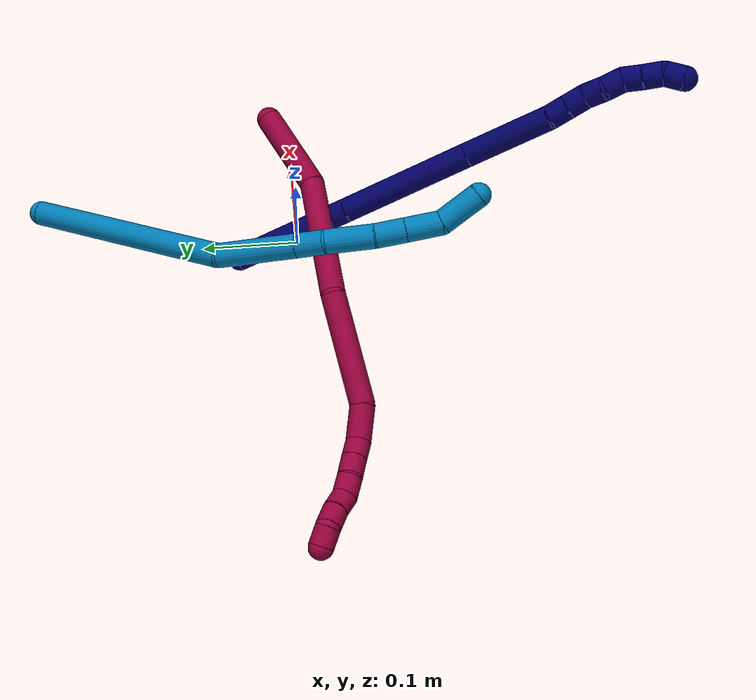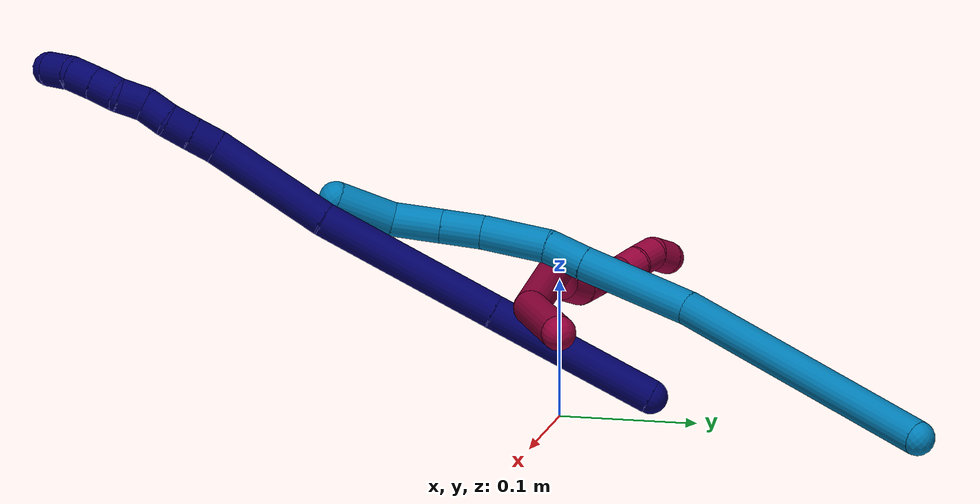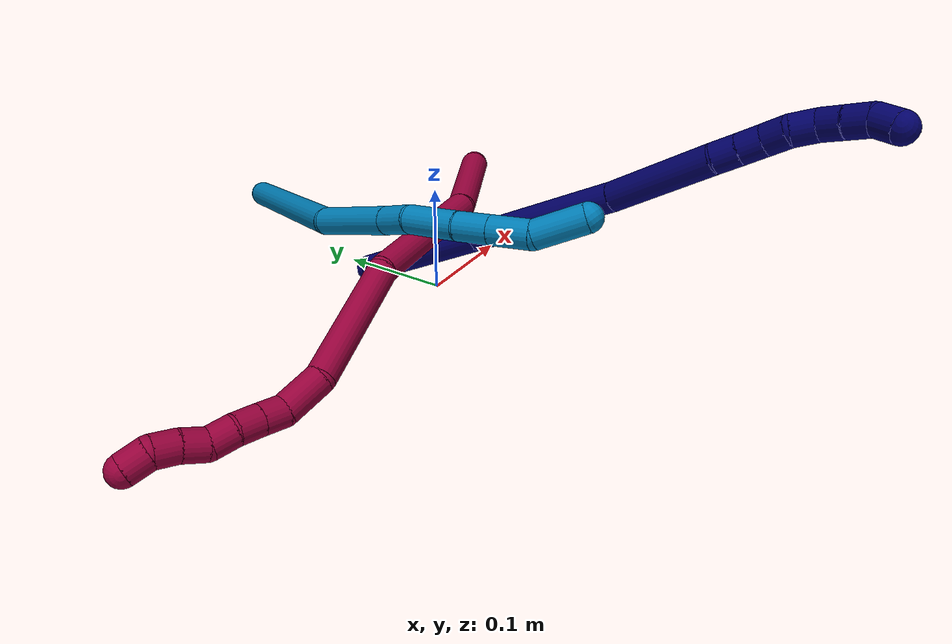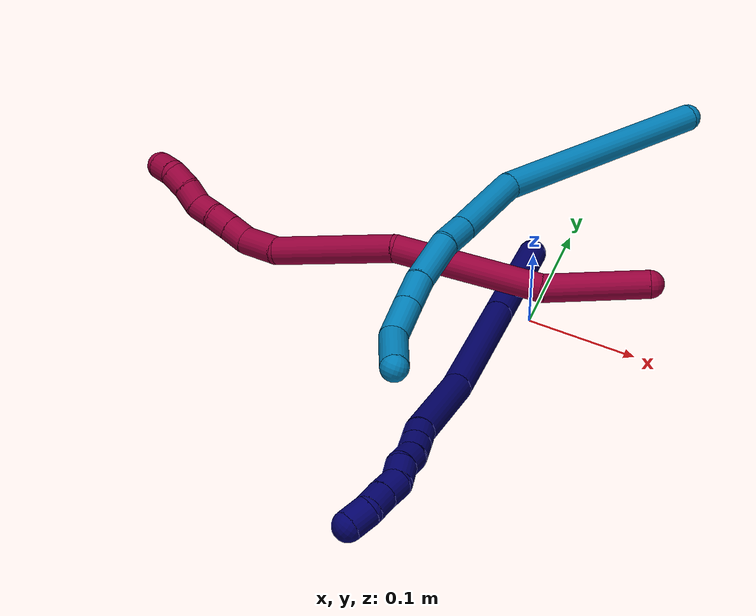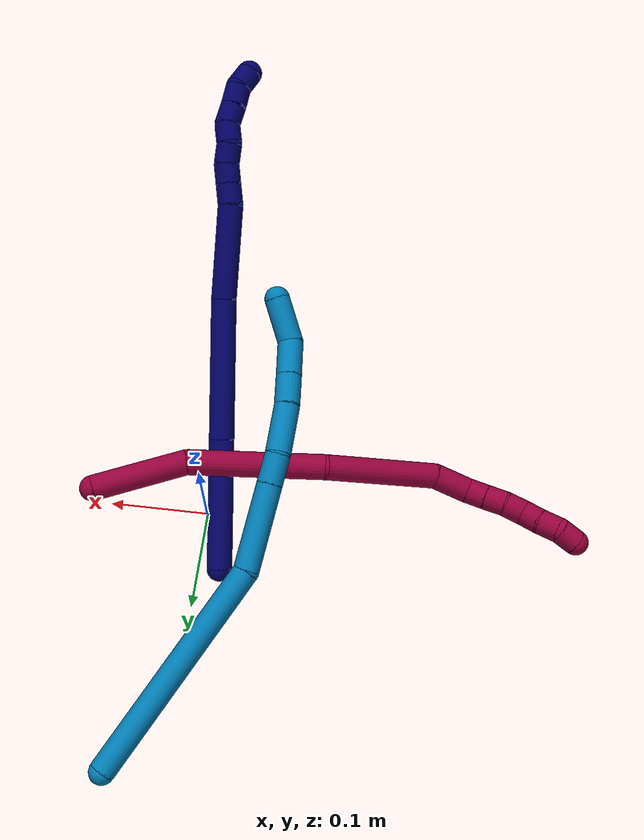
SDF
<sdf version="1.7">
 <world name="default">
  <model name="7">
   <static>0</static>
   <link name="7">
    <collision name="collision-cylinder-e_1_1_4">
     <pose>0.011397 -0.060514 0.017364 1.29136 0.179084 0.13508</pose>
     <geometry><cylinder><radius>0.0125</radius><length>0.127959</length></cylinder></geometry>
     <surface>
      <friction><ode><mu>1.16</mu><mu2>1.16</mu2><slip1>0</slip1><slip2>0</slip2></ode></friction>
      <contact><ode><kp>1e+06</kp><kd>1</kd><max_vel>0</max_vel><min_depth>0.001</min_depth></ode></contact>
     </surface>
    </collision>
    <visual name="visual-cylinder-e_1_1_4">
     <pose>0.011397 -0.060514 0.017364 1.29136 0.179084 0.13508</pose>
     <geometry><cylinder><radius>0.0125</radius><length>0.127959</length></cylinder></geometry>
     <material><ambient>0.003922 0 0.403922 1</ambient></material>
    </visual>
    <collision name="collision-cylinder-e_2_4_5">
     <pose>0.035381 -0.186578 0.053683 1.2893 0.182421 0.137308</pose>
     <geometry><cylinder><radius>0.0125</radius><length>0.138774</length></cylinder></geometry>
     <surface>
      <friction><ode><mu>1.16</mu><mu2>1.16</mu2><slip1>0</slip1><slip2>0</slip2></ode></friction>
      <contact><ode><kp>1e+06</kp><kd>1</kd><max_vel>0</max_vel><min_depth>0.001</min_depth></ode></contact>
     </surface>
    </collision>
    <visual name="visual-cylinder-e_2_4_5">
     <pose>0.035381 -0.186578 0.053683 1.2893 0.182421 0.137308</pose>
     <geometry><cylinder><radius>0.0125</radius><length>0.138774</length></cylinder></geometry>
     <material><ambient>0.003922 0 0.403922 1</ambient></material>
    </visual>
    <collision name="collision-cylinder-e_3_5_6">
     <pose>0.057608 -0.294316 0.089625 1.18802 0.208884 0.141356</pose>
     <geometry><cylinder><radius>0.0125</radius><length>0.092979</length></cylinder></geometry>
     <surface>
      <friction><ode><mu>1.16</mu><mu2>1.16</mu2><slip1>0</slip1><slip2>0</slip2></ode></friction>
      <contact><ode><kp>1e+06</kp><kd>1</kd><max_vel>0</max_vel><min_depth>0.001</min_depth></ode></contact>
     </surface>
    </collision>
    <visual name="visual-cylinder-e_3_5_6">
     <pose>0.057608 -0.294316 0.089625 1.18802 0.208884 0.141356</pose>
     <geometry><cylinder><radius>0.0125</radius><length>0.092979</length></cylinder></geometry>
     <material><ambient>0.003922 0 0.403922 1</ambient></material>
    </visual>
    <collision name="collision-cylinder-e_4_6_7">
     <pose>0.06991 -0.346059 0.108539 1.37175 0.26645 0.218496</pose>
     <geometry><cylinder><radius>0.0125</radius><length>0.020209</length></cylinder></geometry>
     <surface>
      <friction><ode><mu>1.16</mu><mu2>1.16</mu2><slip1>0</slip1><slip2>0</slip2></ode></friction>
      <contact><ode><kp>1e+06</kp><kd>1</kd><max_vel>0</max_vel><min_depth>0.001</min_depth></ode></contact>
     </surface>
    </collision>
    <visual name="visual-cylinder-e_4_6_7">
     <pose>0.06991 -0.346059 0.108539 1.37175 0.26645 0.218496</pose>
     <geometry><cylinder><radius>0.0125</radius><length>0.020209</length></cylinder></geometry>
     <material><ambient>0.003922 0 0.403922 1</ambient></material>
    </visual>
    <collision name="collision-cylinder-e_5_7_8">
     <pose>0.07527 -0.365064 0.11251 1.35773 0.272345 0.220197</pose>
     <geometry><cylinder><radius>0.0125</radius><length>0.020076</length></cylinder></geometry>
     <surface>
      <friction><ode><mu>1.16</mu><mu2>1.16</mu2><slip1>0</slip1><slip2>0</slip2></ode></friction>
      <contact><ode><kp>1e+06</kp><kd>1</kd><max_vel>0</max_vel><min_depth>0.001</min_depth></ode></contact>
     </surface>
    </collision>
    <visual name="visual-cylinder-e_5_7_8">
     <pose>0.07527 -0.365064 0.11251 1.35773 0.272345 0.220197</pose>
     <geometry><cylinder><radius>0.0125</radius><length>0.020076</length></cylinder></geometry>
     <material><ambient>0.003922 0 0.403922 1</ambient></material>
    </visual>
    <collision name="collision-cylinder-e_6_8_9">
     <pose>0.079717 -0.38341 0.118777 1.12768 0.175527 0.111159</pose>
     <geometry><cylinder><radius>0.0125</radius><length>0.020002</length></cylinder></geometry>
     <surface>
      <friction><ode><mu>1.16</mu><mu2>1.16</mu2><slip1>0</slip1><slip2>0</slip2></ode></friction>
      <contact><ode><kp>1e+06</kp><kd>1</kd><max_vel>0</max_vel><min_depth>0.001</min_depth></ode></contact>
     </surface>
    </collision>
    <visual name="visual-cylinder-e_6_8_9">
     <pose>0.079717 -0.38341 0.118777 1.12768 0.175527 0.111159</pose>
     <geometry><cylinder><radius>0.0125</radius><length>0.020002</length></cylinder></geometry>
     <material><ambient>0.003922 0 0.403922 1</ambient></material>
    </visual>
    <collision name="collision-cylinder-e_7_9_10">
     <pose>0.082912 -0.402163 0.12386 1.48368 0.145433 0.133323</pose>
     <geometry><cylinder><radius>0.0125</radius><length>0.02</length></cylinder></geometry>
     <surface>
      <friction><ode><mu>1.16</mu><mu2>1.16</mu2><slip1>0</slip1><slip2>0</slip2></ode></friction>
      <contact><ode><kp>1e+06</kp><kd>1</kd><max_vel>0</max_vel><min_depth>0.001</min_depth></ode></contact>
     </surface>
    </collision>
    <visual name="visual-cylinder-e_7_9_10">
     <pose>0.082912 -0.402163 0.12386 1.48368 0.145433 0.133323</pose>
     <geometry><cylinder><radius>0.0125</radius><length>0.02</length></cylinder></geometry>
     <material><ambient>0.003922 0 0.403922 1</ambient></material>
    </visual>
    <collision name="collision-cylinder-e_8_10_11">
     <pose>0.083509 -0.42102 0.128997 1.12722 -0.085353 -0.053962</pose>
     <geometry><cylinder><radius>0.0125</radius><length>0.020001</length></cylinder></geometry>
     <surface>
      <friction><ode><mu>1.16</mu><mu2>1.16</mu2><slip1>0</slip1><slip2>0</slip2></ode></friction>
      <contact><ode><kp>1e+06</kp><kd>1</kd><max_vel>0</max_vel><min_depth>0.001</min_depth></ode></contact>
     </surface>
    </collision>
    <visual name="visual-cylinder-e_8_10_11">
     <pose>0.083509 -0.42102 0.128997 1.12722 -0.085353 -0.053962</pose>
     <geometry><cylinder><radius>0.0125</radius><length>0.020001</length></cylinder></geometry>
     <material><ambient>0.003922 0 0.403922 1</ambient></material>
    </visual>
    <collision name="collision-cylinder-e_9_11_12">
     <pose>0.082006 -0.439294 0.136958 1.1926 -0.065076 -0.044177</pose>
     <geometry><cylinder><radius>0.0125</radius><length>0.02</length></cylinder></geometry>
     <surface>
      <friction><ode><mu>1.16</mu><mu2>1.16</mu2><slip1>0</slip1><slip2>0</slip2></ode></friction>
      <contact><ode><kp>1e+06</kp><kd>1</kd><max_vel>0</max_vel><min_depth>0.001</min_depth></ode></contact>
     </surface>
    </collision>
    <visual name="visual-cylinder-e_9_11_12">
     <pose>0.082006 -0.439294 0.136958 1.1926 -0.065076 -0.044177</pose>
     <geometry><cylinder><radius>0.0125</radius><length>0.02</length></cylinder></geometry>
     <material><ambient>0.003922 0 0.403922 1</ambient></material>
    </visual>
    <collision name="collision-cylinder-e_10_12_2">
     <pose>0.076922 -0.456543 0.144732 1.09703 -0.459352 -0.283814</pose>
     <geometry><cylinder><radius>0.0125</radius><length>0.02</length></cylinder></geometry>
     <surface>
      <friction><ode><mu>1.16</mu><mu2>1.16</mu2><slip1>0</slip1><slip2>0</slip2></ode></friction>
      <contact><ode><kp>1e+06</kp><kd>1</kd><max_vel>0</max_vel><min_depth>0.001</min_depth></ode></contact>
     </surface>
    </collision>
    <visual name="visual-cylinder-e_10_12_2">
     <pose>0.076922 -0.456543 0.144732 1.09703 -0.459352 -0.283814</pose>
     <geometry><cylinder><radius>0.0125</radius><length>0.02</length></cylinder></geometry>
     <material><ambient>0.003922 0 0.403922 1</ambient></material>
    </visual>
    <collision name="collision-sphere-2">
     <pose>0.072489 -0.464519 0.148822 0 -0 0</pose>
     <geometry><sphere><radius>0.0125</radius></sphere></geometry>
     <surface>
      <friction><ode><mu>1.16</mu><mu2>1.16</mu2><slip1>0</slip1><slip2>0</slip2></ode></friction>
      <contact><ode><kp>1e+06</kp><kd>1</kd><max_vel>0</max_vel><min_depth>0.001</min_depth></ode></contact>
     </surface>
    </collision>
    <visual name="visual-sphere-2">
     <pose>0.072489 -0.464519 0.148822 0 -0 0</pose>
     <geometry><sphere><radius>0.0125</radius></sphere></geometry>
     <material><ambient>0.003922 0 0.403922 1</ambient></material>
    </visual>
    <collision name="collision-sphere-12">
     <pose>0.081356 -0.448567 0.140643 0 -0 0</pose>
     <geometry><sphere><radius>0.0125</radius></sphere></geometry>
     <surface>
      <friction><ode><mu>1.16</mu><mu2>1.16</mu2><slip1>0</slip1><slip2>0</slip2></ode></friction>
      <contact><ode><kp>1e+06</kp><kd>1</kd><max_vel>0</max_vel><min_depth>0.001</min_depth></ode></contact>
     </surface>
    </collision>
    <visual name="visual-sphere-12">
     <pose>0.081356 -0.448567 0.140643 0 -0 0</pose>
     <geometry><sphere><radius>0.0125</radius></sphere></geometry>
     <material><ambient>0.003922 0 0.403922 1</ambient></material>
    </visual>
    <collision name="collision-sphere-11">
     <pose>0.082657 -0.43002 0.133274 0 -0 0</pose>
     <geometry><sphere><radius>0.0125</radius></sphere></geometry>
     <surface>
      <friction><ode><mu>1.16</mu><mu2>1.16</mu2><slip1>0</slip1><slip2>0</slip2></ode></friction>
      <contact><ode><kp>1e+06</kp><kd>1</kd><max_vel>0</max_vel><min_depth>0.001</min_depth></ode></contact>
     </surface>
    </collision>
    <visual name="visual-sphere-11">
     <pose>0.082657 -0.43002 0.133274 0 -0 0</pose>
     <geometry><sphere><radius>0.0125</radius></sphere></geometry>
     <material><ambient>0.003922 0 0.403922 1</ambient></material>
    </visual>
    <collision name="collision-sphere-10">
     <pose>0.084362 -0.41202 0.124721 0 -0 0</pose>
     <geometry><sphere><radius>0.0125</radius></sphere></geometry>
     <surface>
      <friction><ode><mu>1.16</mu><mu2>1.16</mu2><slip1>0</slip1><slip2>0</slip2></ode></friction>
      <contact><ode><kp>1e+06</kp><kd>1</kd><max_vel>0</max_vel><min_depth>0.001</min_depth></ode></contact>
     </surface>
    </collision>
    <visual name="visual-sphere-10">
     <pose>0.084362 -0.41202 0.124721 0 -0 0</pose>
     <geometry><sphere><radius>0.0125</radius></sphere></geometry>
     <material><ambient>0.003922 0 0.403922 1</ambient></material>
    </visual>
    <collision name="collision-sphere-9">
     <pose>0.081463 -0.392306 0.122999 0 -0 0</pose>
     <geometry><sphere><radius>0.0125</radius></sphere></geometry>
     <surface>
      <friction><ode><mu>1.16</mu><mu2>1.16</mu2><slip1>0</slip1><slip2>0</slip2></ode></friction>
      <contact><ode><kp>1e+06</kp><kd>1</kd><max_vel>0</max_vel><min_depth>0.001</min_depth></ode></contact>
     </surface>
    </collision>
    <visual name="visual-sphere-9">
     <pose>0.081463 -0.392306 0.122999 0 -0 0</pose>
     <geometry><sphere><radius>0.0125</radius></sphere></geometry>
     <material><ambient>0.003922 0 0.403922 1</ambient></material>
    </visual>
    <collision name="collision-sphere-4">
     <pose>0.022793 -0.121029 0.034728 0 -0 0</pose>
     <geometry><sphere><radius>0.0125</radius></sphere></geometry>
     <surface>
      <friction><ode><mu>1.16</mu><mu2>1.16</mu2><slip1>0</slip1><slip2>0</slip2></ode></friction>
      <contact><ode><kp>1e+06</kp><kd>1</kd><max_vel>0</max_vel><min_depth>0.001</min_depth></ode></contact>
     </surface>
    </collision>
    <visual name="visual-sphere-4">
     <pose>0.022793 -0.121029 0.034728 0 -0 0</pose>
     <geometry><sphere><radius>0.0125</radius></sphere></geometry>
     <material><ambient>0.003922 0 0.403922 1</ambient></material>
    </visual>
    <collision name="collision-sphere-1">
     <geometry><sphere><radius>0.0125</radius></sphere></geometry>
     <surface>
      <friction><ode><mu>1.16</mu><mu2>1.16</mu2><slip1>0</slip1><slip2>0</slip2></ode></friction>
      <contact><ode><kp>1e+06</kp><kd>1</kd><max_vel>0</max_vel><min_depth>0.001</min_depth></ode></contact>
     </surface>
    </collision>
    <visual name="visual-sphere-1">
     <geometry><sphere><radius>0.0125</radius></sphere></geometry>
     <material><ambient>0.003922 0 0.403922 1</ambient></material>
    </visual>
    <collision name="collision-sphere-8">
     <pose>0.07797 -0.374513 0.114555 0 -0 0</pose>
     <geometry><sphere><radius>0.0125</radius></sphere></geometry>
     <surface>
      <friction><ode><mu>1.16</mu><mu2>1.16</mu2><slip1>0</slip1><slip2>0</slip2></ode></friction>
      <contact><ode><kp>1e+06</kp><kd>1</kd><max_vel>0</max_vel><min_depth>0.001</min_depth></ode></contact>
     </surface>
    </collision>
    <visual name="visual-sphere-8">
     <pose>0.07797 -0.374513 0.114555 0 -0 0</pose>
     <geometry><sphere><radius>0.0125</radius></sphere></geometry>
     <material><ambient>0.003922 0 0.403922 1</ambient></material>
    </visual>
    <collision name="collision-sphere-5">
     <pose>0.047968 -0.252128 0.072639 0 -0 0</pose>
     <geometry><sphere><radius>0.0125</radius></sphere></geometry>
     <surface>
      <friction><ode><mu>1.16</mu><mu2>1.16</mu2><slip1>0</slip1><slip2>0</slip2></ode></friction>
      <contact><ode><kp>1e+06</kp><kd>1</kd><max_vel>0</max_vel><min_depth>0.001</min_depth></ode></contact>
     </surface>
    </collision>
    <visual name="visual-sphere-5">
     <pose>0.047968 -0.252128 0.072639 0 -0 0</pose>
     <geometry><sphere><radius>0.0125</radius></sphere></geometry>
     <material><ambient>0.003922 0 0.403922 1</ambient></material>
    </visual>
    <collision name="collision-sphere-6">
     <pose>0.067249 -0.336504 0.106611 0 -0 0</pose>
     <geometry><sphere><radius>0.0125</radius></sphere></geometry>
     <surface>
      <friction><ode><mu>1.16</mu><mu2>1.16</mu2><slip1>0</slip1><slip2>0</slip2></ode></friction>
      <contact><ode><kp>1e+06</kp><kd>1</kd><max_vel>0</max_vel><min_depth>0.001</min_depth></ode></contact>
     </surface>
    </collision>
    <visual name="visual-sphere-6">
     <pose>0.067249 -0.336504 0.106611 0 -0 0</pose>
     <geometry><sphere><radius>0.0125</radius></sphere></geometry>
     <material><ambient>0.003922 0 0.403922 1</ambient></material>
    </visual>
    <collision name="collision-sphere-7">
     <pose>0.07257 -0.355615 0.110466 0 -0 0</pose>
     <geometry><sphere><radius>0.0125</radius></sphere></geometry>
     <surface>
      <friction><ode><mu>1.16</mu><mu2>1.16</mu2><slip1>0</slip1><slip2>0</slip2></ode></friction>
      <contact><ode><kp>1e+06</kp><kd>1</kd><max_vel>0</max_vel><min_depth>0.001</min_depth></ode></contact>
     </surface>
    </collision>
    <visual name="visual-sphere-7">
     <pose>0.07257 -0.355615 0.110466 0 -0 0</pose>
     <geometry><sphere><radius>0.0125</radius></sphere></geometry>
     <material><ambient>0.003922 0 0.403922 1</ambient></material>
    </visual>
    <inertial>
     <pose>0.0455 -0.234746 0.071048 0 -0 0</pose>
     <mass>0.5</mass>
     <inertia>
      <ixx>0.000546</ixx>
      <ixy>0</ixy>
      <ixz>0</ixz>
      <iyy>0.000181</iyy>
      <iyz>0</iyz>
      <izz>0.000382</izz>
     </inertia>
    </inertial>
   </link>
   <pose>-0.022691 0.061672 0.012225 -0.275801 -0.902044 0.438931</pose>
  </model>
  <model name="8">
   <static>0</static>
   <link name="8">
    <collision name="collision-cylinder-e_1_1_4">
     <pose>-0.022598 0.007597 -0.040023 -2.95401 -0.506457 2.4443</pose>
     <geometry><cylinder><radius>0.0125</radius><length>0.093171</length></cylinder></geometry>
     <surface>
      <friction><ode><mu>1.16</mu><mu2>1.16</mu2><slip1>0</slip1><slip2>0</slip2></ode></friction>
      <contact><ode><kp>1e+06</kp><kd>1</kd><max_vel>0</max_vel><min_depth>0.001</min_depth></ode></contact>
     </surface>
    </collision>
    <visual name="visual-cylinder-e_1_1_4">
     <pose>-0.022598 0.007597 -0.040023 -2.95401 -0.506457 2.4443</pose>
     <geometry><cylinder><radius>0.0125</radius><length>0.093171</length></cylinder></geometry>
     <material><ambient>0.584314 0 0.227451 1</ambient></material>
    </visual>
    <collision name="collision-cylinder-e_2_4_5">
     <pose>-0.09364 0.012346 -0.126908 3.0809 -0.801069 -2.99845</pose>
     <geometry><cylinder><radius>0.0125</radius><length>0.134922</length></cylinder></geometry>
     <surface>
      <friction><ode><mu>1.16</mu><mu2>1.16</mu2><slip1>0</slip1><slip2>0</slip2></ode></friction>
      <contact><ode><kp>1e+06</kp><kd>1</kd><max_vel>0</max_vel><min_depth>0.001</min_depth></ode></contact>
     </surface>
    </collision>
    <visual name="visual-cylinder-e_2_4_5">
     <pose>-0.09364 0.012346 -0.126908 3.0809 -0.801069 -2.99845</pose>
     <geometry><cylinder><radius>0.0125</radius><length>0.134922</length></cylinder></geometry>
     <material><ambient>0.584314 0 0.227451 1</ambient></material>
    </visual>
    <collision name="collision-cylinder-e_3_5_6">
     <pose>-0.184771 0.025316 -0.208723 -2.71663 -0.838673 2.24012</pose>
     <geometry><cylinder><radius>0.0125</radius><length>0.114788</length></cylinder></geometry>
     <surface>
      <friction><ode><mu>1.16</mu><mu2>1.16</mu2><slip1>0</slip1><slip2>0</slip2></ode></friction>
      <contact><ode><kp>1e+06</kp><kd>1</kd><max_vel>0</max_vel><min_depth>0.001</min_depth></ode></contact>
     </surface>
    </collision>
    <visual name="visual-cylinder-e_3_5_6">
     <pose>-0.184771 0.025316 -0.208723 -2.71663 -0.838673 2.24012</pose>
     <geometry><cylinder><radius>0.0125</radius><length>0.114788</length></cylinder></geometry>
     <material><ambient>0.584314 0 0.227451 1</ambient></material>
    </visual>
    <collision name="collision-cylinder-e_4_6_7">
     <pose>-0.244326 0.042554 -0.250315 -2.93073 -1.18815 2.83079</pose>
     <geometry><cylinder><radius>0.0125</radius><length>0.036368</length></cylinder></geometry>
     <surface>
      <friction><ode><mu>1.16</mu><mu2>1.16</mu2><slip1>0</slip1><slip2>0</slip2></ode></friction>
      <contact><ode><kp>1e+06</kp><kd>1</kd><max_vel>0</max_vel><min_depth>0.001</min_depth></ode></contact>
     </surface>
    </collision>
    <visual name="visual-cylinder-e_4_6_7">
     <pose>-0.244326 0.042554 -0.250315 -2.93073 -1.18815 2.83079</pose>
     <geometry><cylinder><radius>0.0125</radius><length>0.036368</length></cylinder></geometry>
     <material><ambient>0.584314 0 0.227451 1</ambient></material>
    </visual>
    <collision name="collision-cylinder-e_5_7_8">
     <pose>-0.269683 0.040883 -0.261382 2.53195 -1.0041 -2.10075</pose>
     <geometry><cylinder><radius>0.0125</radius><length>0.020122</length></cylinder></geometry>
     <surface>
      <friction><ode><mu>1.16</mu><mu2>1.16</mu2><slip1>0</slip1><slip2>0</slip2></ode></friction>
      <contact><ode><kp>1e+06</kp><kd>1</kd><max_vel>0</max_vel><min_depth>0.001</min_depth></ode></contact>
     </surface>
    </collision>
    <visual name="visual-cylinder-e_5_7_8">
     <pose>-0.269683 0.040883 -0.261382 2.53195 -1.0041 -2.10075</pose>
     <geometry><cylinder><radius>0.0125</radius><length>0.020122</length></cylinder></geometry>
     <material><ambient>0.584314 0 0.227451 1</ambient></material>
    </visual>
    <collision name="collision-cylinder-e_6_8_9">
     <pose>-0.286633 0.03491 -0.270386 2.57987 -1.00217 -2.17202</pose>
     <geometry><cylinder><radius>0.0125</radius><length>0.020082</length></cylinder></geometry>
     <surface>
      <friction><ode><mu>1.16</mu><mu2>1.16</mu2><slip1>0</slip1><slip2>0</slip2></ode></friction>
      <contact><ode><kp>1e+06</kp><kd>1</kd><max_vel>0</max_vel><min_depth>0.001</min_depth></ode></contact>
     </surface>
    </collision>
    <visual name="visual-cylinder-e_6_8_9">
     <pose>-0.286633 0.03491 -0.270386 2.57987 -1.00217 -2.17202</pose>
     <geometry><cylinder><radius>0.0125</radius><length>0.020082</length></cylinder></geometry>
     <material><ambient>0.584314 0 0.227451 1</ambient></material>
    </visual>
    <collision name="collision-cylinder-e_7_9_10">
     <pose>-0.304579 0.030468 -0.278445 2.72009 -1.18815 -2.52816</pose>
     <geometry><cylinder><radius>0.0125</radius><length>0.020448</length></cylinder></geometry>
     <surface>
      <friction><ode><mu>1.16</mu><mu2>1.16</mu2><slip1>0</slip1><slip2>0</slip2></ode></friction>
      <contact><ode><kp>1e+06</kp><kd>1</kd><max_vel>0</max_vel><min_depth>0.001</min_depth></ode></contact>
     </surface>
    </collision>
    <visual name="visual-cylinder-e_7_9_10">
     <pose>-0.304579 0.030468 -0.278445 2.72009 -1.18815 -2.52816</pose>
     <geometry><cylinder><radius>0.0125</radius><length>0.020448</length></cylinder></geometry>
     <material><ambient>0.584314 0 0.227451 1</ambient></material>
    </visual>
    <collision name="collision-cylinder-e_8_10_11">
     <pose>-0.321785 0.023177 -0.284759 2.02964 -0.879476 -1.29613</pose>
     <geometry><cylinder><radius>0.0125</radius><length>0.020047</length></cylinder></geometry>
     <surface>
      <friction><ode><mu>1.16</mu><mu2>1.16</mu2><slip1>0</slip1><slip2>0</slip2></ode></friction>
      <contact><ode><kp>1e+06</kp><kd>1</kd><max_vel>0</max_vel><min_depth>0.001</min_depth></ode></contact>
     </surface>
    </collision>
    <visual name="visual-cylinder-e_8_10_11">
     <pose>-0.321785 0.023177 -0.284759 2.02964 -0.879476 -1.29613</pose>
     <geometry><cylinder><radius>0.0125</radius><length>0.020047</length></cylinder></geometry>
     <material><ambient>0.584314 0 0.227451 1</ambient></material>
    </visual>
    <collision name="collision-cylinder-e_9_11_12">
     <pose>-0.337811 0.013144 -0.291192 2.26778 -0.976414 -1.69903</pose>
     <geometry><cylinder><radius>0.0125</radius><length>0.020044</length></cylinder></geometry>
     <surface>
      <friction><ode><mu>1.16</mu><mu2>1.16</mu2><slip1>0</slip1><slip2>0</slip2></ode></friction>
      <contact><ode><kp>1e+06</kp><kd>1</kd><max_vel>0</max_vel><min_depth>0.001</min_depth></ode></contact>
     </surface>
    </collision>
    <visual name="visual-cylinder-e_9_11_12">
     <pose>-0.337811 0.013144 -0.291192 2.26778 -0.976414 -1.69903</pose>
     <geometry><cylinder><radius>0.0125</radius><length>0.020044</length></cylinder></geometry>
     <material><ambient>0.584314 0 0.227451 1</ambient></material>
    </visual>
    <collision name="collision-cylinder-e_10_12_2">
     <pose>-0.355994 0.008816 -0.296361 3.12541 -1.41362 -3.12264</pose>
     <geometry><cylinder><radius>0.0125</radius><length>0.020008</length></cylinder></geometry>
     <surface>
      <friction><ode><mu>1.16</mu><mu2>1.16</mu2><slip1>0</slip1><slip2>0</slip2></ode></friction>
      <contact><ode><kp>1e+06</kp><kd>1</kd><max_vel>0</max_vel><min_depth>0.001</min_depth></ode></contact>
     </surface>
    </collision>
    <visual name="visual-cylinder-e_10_12_2">
     <pose>-0.355994 0.008816 -0.296361 3.12541 -1.41362 -3.12264</pose>
     <geometry><cylinder><radius>0.0125</radius><length>0.020008</length></cylinder></geometry>
     <material><ambient>0.584314 0 0.227451 1</ambient></material>
    </visual>
    <collision name="collision-sphere-2">
     <pose>-0.365875 0.00879 -0.297926 0 -0 0</pose>
     <geometry><sphere><radius>0.0125</radius></sphere></geometry>
     <surface>
      <friction><ode><mu>1.16</mu><mu2>1.16</mu2><slip1>0</slip1><slip2>0</slip2></ode></friction>
      <contact><ode><kp>1e+06</kp><kd>1</kd><max_vel>0</max_vel><min_depth>0.001</min_depth></ode></contact>
     </surface>
    </collision>
    <visual name="visual-sphere-2">
     <pose>-0.365875 0.00879 -0.297926 0 -0 0</pose>
     <geometry><sphere><radius>0.0125</radius></sphere></geometry>
     <material><ambient>0.584314 0 0.227451 1</ambient></material>
    </visual>
    <collision name="collision-sphere-12">
     <pose>-0.346114 0.008841 -0.294795 0 -0 0</pose>
     <geometry><sphere><radius>0.0125</radius></sphere></geometry>
     <surface>
      <friction><ode><mu>1.16</mu><mu2>1.16</mu2><slip1>0</slip1><slip2>0</slip2></ode></friction>
      <contact><ode><kp>1e+06</kp><kd>1</kd><max_vel>0</max_vel><min_depth>0.001</min_depth></ode></contact>
     </surface>
    </collision>
    <visual name="visual-sphere-12">
     <pose>-0.346114 0.008841 -0.294795 0 -0 0</pose>
     <geometry><sphere><radius>0.0125</radius></sphere></geometry>
     <material><ambient>0.584314 0 0.227451 1</ambient></material>
    </visual>
    <collision name="collision-sphere-11">
     <pose>-0.329507 0.017448 -0.28759 0 -0 0</pose>
     <geometry><sphere><radius>0.0125</radius></sphere></geometry>
     <surface>
      <friction><ode><mu>1.16</mu><mu2>1.16</mu2><slip1>0</slip1><slip2>0</slip2></ode></friction>
      <contact><ode><kp>1e+06</kp><kd>1</kd><max_vel>0</max_vel><min_depth>0.001</min_depth></ode></contact>
     </surface>
    </collision>
    <visual name="visual-sphere-11">
     <pose>-0.329507 0.017448 -0.28759 0 -0 0</pose>
     <geometry><sphere><radius>0.0125</radius></sphere></geometry>
     <material><ambient>0.584314 0 0.227451 1</ambient></material>
    </visual>
    <collision name="collision-sphere-10">
     <pose>-0.314063 0.028907 -0.281929 0 -0 0</pose>
     <geometry><sphere><radius>0.0125</radius></sphere></geometry>
     <surface>
      <friction><ode><mu>1.16</mu><mu2>1.16</mu2><slip1>0</slip1><slip2>0</slip2></ode></friction>
      <contact><ode><kp>1e+06</kp><kd>1</kd><max_vel>0</max_vel><min_depth>0.001</min_depth></ode></contact>
     </surface>
    </collision>
    <visual name="visual-sphere-10">
     <pose>-0.314063 0.028907 -0.281929 0 -0 0</pose>
     <geometry><sphere><radius>0.0125</radius></sphere></geometry>
     <material><ambient>0.584314 0 0.227451 1</ambient></material>
    </visual>
    <collision name="collision-sphere-9">
     <pose>-0.295094 0.03203 -0.274962 0 -0 0</pose>
     <geometry><sphere><radius>0.0125</radius></sphere></geometry>
     <surface>
      <friction><ode><mu>1.16</mu><mu2>1.16</mu2><slip1>0</slip1><slip2>0</slip2></ode></friction>
      <contact><ode><kp>1e+06</kp><kd>1</kd><max_vel>0</max_vel><min_depth>0.001</min_depth></ode></contact>
     </surface>
    </collision>
    <visual name="visual-sphere-9">
     <pose>-0.295094 0.03203 -0.274962 0 -0 0</pose>
     <geometry><sphere><radius>0.0125</radius></sphere></geometry>
     <material><ambient>0.584314 0 0.227451 1</ambient></material>
    </visual>
    <collision name="collision-sphere-4">
     <pose>-0.045196 0.015194 -0.080046 0 -0 0</pose>
     <geometry><sphere><radius>0.0125</radius></sphere></geometry>
     <surface>
      <friction><ode><mu>1.16</mu><mu2>1.16</mu2><slip1>0</slip1><slip2>0</slip2></ode></friction>
      <contact><ode><kp>1e+06</kp><kd>1</kd><max_vel>0</max_vel><min_depth>0.001</min_depth></ode></contact>
     </surface>
    </collision>
    <visual name="visual-sphere-4">
     <pose>-0.045196 0.015194 -0.080046 0 -0 0</pose>
     <geometry><sphere><radius>0.0125</radius></sphere></geometry>
     <material><ambient>0.584314 0 0.227451 1</ambient></material>
    </visual>
    <collision name="collision-sphere-1">
     <geometry><sphere><radius>0.0125</radius></sphere></geometry>
     <surface>
      <friction><ode><mu>1.16</mu><mu2>1.16</mu2><slip1>0</slip1><slip2>0</slip2></ode></friction>
      <contact><ode><kp>1e+06</kp><kd>1</kd><max_vel>0</max_vel><min_depth>0.001</min_depth></ode></contact>
     </surface>
    </collision>
    <visual name="visual-sphere-1">
     <geometry><sphere><radius>0.0125</radius></sphere></geometry>
     <material><ambient>0.584314 0 0.227451 1</ambient></material>
    </visual>
    <collision name="collision-sphere-8">
     <pose>-0.278172 0.03779 -0.26581 0 -0 0</pose>
     <geometry><sphere><radius>0.0125</radius></sphere></geometry>
     <surface>
      <friction><ode><mu>1.16</mu><mu2>1.16</mu2><slip1>0</slip1><slip2>0</slip2></ode></friction>
      <contact><ode><kp>1e+06</kp><kd>1</kd><max_vel>0</max_vel><min_depth>0.001</min_depth></ode></contact>
     </surface>
    </collision>
    <visual name="visual-sphere-8">
     <pose>-0.278172 0.03779 -0.26581 0 -0 0</pose>
     <geometry><sphere><radius>0.0125</radius></sphere></geometry>
     <material><ambient>0.584314 0 0.227451 1</ambient></material>
    </visual>
    <collision name="collision-sphere-5">
     <pose>-0.142083 0.009498 -0.173771 0 -0 0</pose>
     <geometry><sphere><radius>0.0125</radius></sphere></geometry>
     <surface>
      <friction><ode><mu>1.16</mu><mu2>1.16</mu2><slip1>0</slip1><slip2>0</slip2></ode></friction>
      <contact><ode><kp>1e+06</kp><kd>1</kd><max_vel>0</max_vel><min_depth>0.001</min_depth></ode></contact>
     </surface>
    </collision>
    <visual name="visual-sphere-5">
     <pose>-0.142083 0.009498 -0.173771 0 -0 0</pose>
     <geometry><sphere><radius>0.0125</radius></sphere></geometry>
     <material><ambient>0.584314 0 0.227451 1</ambient></material>
    </visual>
    <collision name="collision-sphere-6">
     <pose>-0.227458 0.041133 -0.243676 0 -0 0</pose>
     <geometry><sphere><radius>0.0125</radius></sphere></geometry>
     <surface>
      <friction><ode><mu>1.16</mu><mu2>1.16</mu2><slip1>0</slip1><slip2>0</slip2></ode></friction>
      <contact><ode><kp>1e+06</kp><kd>1</kd><max_vel>0</max_vel><min_depth>0.001</min_depth></ode></contact>
     </surface>
    </collision>
    <visual name="visual-sphere-6">
     <pose>-0.227458 0.041133 -0.243676 0 -0 0</pose>
     <geometry><sphere><radius>0.0125</radius></sphere></geometry>
     <material><ambient>0.584314 0 0.227451 1</ambient></material>
    </visual>
    <collision name="collision-sphere-7">
     <pose>-0.261195 0.043975 -0.256954 0 -0 0</pose>
     <geometry><sphere><radius>0.0125</radius></sphere></geometry>
     <surface>
      <friction><ode><mu>1.16</mu><mu2>1.16</mu2><slip1>0</slip1><slip2>0</slip2></ode></friction>
      <contact><ode><kp>1e+06</kp><kd>1</kd><max_vel>0</max_vel><min_depth>0.001</min_depth></ode></contact>
     </surface>
    </collision>
    <visual name="visual-sphere-7">
     <pose>-0.261195 0.043975 -0.256954 0 -0 0</pose>
     <geometry><sphere><radius>0.0125</radius></sphere></geometry>
     <material><ambient>0.584314 0 0.227451 1</ambient></material>
    </visual>
    <inertial>
     <pose>-0.16518 0.019757 -0.175544 0 -0 0</pose>
     <mass>0.5</mass>
     <inertia>
      <ixx>-0.000194</ixx>
      <ixy>0</ixy>
      <ixz>0</ixz>
      <iyy>0.00047</iyy>
      <iyz>0</iyz>
      <izz>0.000235</izz>
     </inertia>
    </inertial>
   </link>
   <pose>0.100793 0.021112 0.085046 -1.96457 -0.410964 -0.596436</pose>
  </model>
  <model name="9">
   <static>0</static>
   <link name="9">
    <collision name="collision-cylinder-e_1_1_4">
     <pose>-0.089955 -0.039114 -0.053577 2.51099 -0.93539 -1.99473</pose>
     <geometry><cylinder><radius>0.0125</radius><length>0.223539</length></cylinder></geometry>
     <surface>
      <friction><ode><mu>1.16</mu><mu2>1.16</mu2><slip1>0</slip1><slip2>0</slip2></ode></friction>
      <contact><ode><kp>1e+06</kp><kd>1</kd><max_vel>0</max_vel><min_depth>0.001</min_depth></ode></contact>
     </surface>
    </collision>
    <visual name="visual-cylinder-e_1_1_4">
     <pose>-0.089955 -0.039114 -0.053577 2.51099 -0.93539 -1.99473</pose>
     <geometry><cylinder><radius>0.0125</radius><length>0.223539</length></cylinder></geometry>
     <material><ambient>0 0.490196 0.709804 1</ambient></material>
    </visual>
    <collision name="collision-cylinder-e_2_4_5">
     <pose>-0.204526 -0.105067 -0.128585 2.2446 -0.621836 -1.17755</pose>
     <geometry><cylinder><radius>0.0125</radius><length>0.08451</length></cylinder></geometry>
     <surface>
      <friction><ode><mu>1.16</mu><mu2>1.16</mu2><slip1>0</slip1><slip2>0</slip2></ode></friction>
      <contact><ode><kp>1e+06</kp><kd>1</kd><max_vel>0</max_vel><min_depth>0.001</min_depth></ode></contact>
     </surface>
    </collision>
    <visual name="visual-cylinder-e_2_4_5">
     <pose>-0.204526 -0.105067 -0.128585 2.2446 -0.621836 -1.17755</pose>
     <geometry><cylinder><radius>0.0125</radius><length>0.08451</length></cylinder></geometry>
     <material><ambient>0 0.490196 0.709804 1</ambient></material>
    </visual>
    <collision name="collision-cylinder-e_3_5_6">
     <pose>-0.238171 -0.141529 -0.157209 2.21273 -0.644588 -1.17587</pose>
     <geometry><cylinder><radius>0.0125</radius><length>0.030059</length></cylinder></geometry>
     <surface>
      <friction><ode><mu>1.16</mu><mu2>1.16</mu2><slip1>0</slip1><slip2>0</slip2></ode></friction>
      <contact><ode><kp>1e+06</kp><kd>1</kd><max_vel>0</max_vel><min_depth>0.001</min_depth></ode></contact>
     </surface>
    </collision>
    <visual name="visual-cylinder-e_3_5_6">
     <pose>-0.238171 -0.141529 -0.157209 2.21273 -0.644588 -1.17587</pose>
     <geometry><cylinder><radius>0.0125</radius><length>0.030059</length></cylinder></geometry>
     <material><ambient>0 0.490196 0.709804 1</ambient></material>
    </visual>
    <collision name="collision-cylinder-e_4_6_7">
     <pose>-0.258249 -0.166639 -0.180308 2.36952 -0.461708 -1.04865</pose>
     <geometry><cylinder><radius>0.0125</radius><length>0.049595</length></cylinder></geometry>
     <surface>
      <friction><ode><mu>1.16</mu><mu2>1.16</mu2><slip1>0</slip1><slip2>0</slip2></ode></friction>
      <contact><ode><kp>1e+06</kp><kd>1</kd><max_vel>0</max_vel><min_depth>0.001</min_depth></ode></contact>
     </surface>
    </collision>
    <visual name="visual-cylinder-e_4_6_7">
     <pose>-0.258249 -0.166639 -0.180308 2.36952 -0.461708 -1.04865</pose>
     <geometry><cylinder><radius>0.0125</radius><length>0.049595</length></cylinder></geometry>
     <material><ambient>0 0.490196 0.709804 1</ambient></material>
    </visual>
    <collision name="collision-cylinder-e_5_7_8">
     <pose>-0.274353 -0.192412 -0.206336 2.34815 -0.337087 -0.771629</pose>
     <geometry><cylinder><radius>0.0125</radius><length>0.030582</length></cylinder></geometry>
     <surface>
      <friction><ode><mu>1.16</mu><mu2>1.16</mu2><slip1>0</slip1><slip2>0</slip2></ode></friction>
      <contact><ode><kp>1e+06</kp><kd>1</kd><max_vel>0</max_vel><min_depth>0.001</min_depth></ode></contact>
     </surface>
    </collision>
    <visual name="visual-cylinder-e_5_7_8">
     <pose>-0.274353 -0.192412 -0.206336 2.34815 -0.337087 -0.771629</pose>
     <geometry><cylinder><radius>0.0125</radius><length>0.030582</length></cylinder></geometry>
     <material><ambient>0 0.490196 0.709804 1</ambient></material>
    </visual>
    <collision name="collision-cylinder-e_6_8_9">
     <pose>-0.285302 -0.215056 -0.228559 2.34568 -0.328283 -0.750642</pose>
     <geometry><cylinder><radius>0.0125</radius><length>0.036544</length></cylinder></geometry>
     <surface>
      <friction><ode><mu>1.16</mu><mu2>1.16</mu2><slip1>0</slip1><slip2>0</slip2></ode></friction>
      <contact><ode><kp>1e+06</kp><kd>1</kd><max_vel>0</max_vel><min_depth>0.001</min_depth></ode></contact>
     </surface>
    </collision>
    <visual name="visual-cylinder-e_6_8_9">
     <pose>-0.285302 -0.215056 -0.228559 2.34568 -0.328283 -0.750642</pose>
     <geometry><cylinder><radius>0.0125</radius><length>0.036544</length></cylinder></geometry>
     <material><ambient>0 0.490196 0.709804 1</ambient></material>
    </visual>
    <collision name="collision-cylinder-e_7_9_2">
     <pose>-0.294351 -0.248375 -0.248456 1.9269 -0.140286 -0.201503</pose>
     <geometry><cylinder><radius>0.0125</radius><length>0.04517</length></cylinder></geometry>
     <surface>
      <friction><ode><mu>1.16</mu><mu2>1.16</mu2><slip1>0</slip1><slip2>0</slip2></ode></friction>
      <contact><ode><kp>1e+06</kp><kd>1</kd><max_vel>0</max_vel><min_depth>0.001</min_depth></ode></contact>
     </surface>
    </collision>
    <visual name="visual-cylinder-e_7_9_2">
     <pose>-0.294351 -0.248375 -0.248456 1.9269 -0.140286 -0.201503</pose>
     <geometry><cylinder><radius>0.0125</radius><length>0.04517</length></cylinder></geometry>
     <material><ambient>0 0.490196 0.709804 1</ambient></material>
    </visual>
    <collision name="collision-sphere-2">
     <pose>-0.297509 -0.269335 -0.256252 0 -0 0</pose>
     <geometry><sphere><radius>0.0125</radius></sphere></geometry>
     <surface>
      <friction><ode><mu>1.16</mu><mu2>1.16</mu2><slip1>0</slip1><slip2>0</slip2></ode></friction>
      <contact><ode><kp>1e+06</kp><kd>1</kd><max_vel>0</max_vel><min_depth>0.001</min_depth></ode></contact>
     </surface>
    </collision>
    <visual name="visual-sphere-2">
     <pose>-0.297509 -0.269335 -0.256252 0 -0 0</pose>
     <geometry><sphere><radius>0.0125</radius></sphere></geometry>
     <material><ambient>0 0.490196 0.709804 1</ambient></material>
    </visual>
    <collision name="collision-sphere-9">
     <pose>-0.291193 -0.227415 -0.24066 0 -0 0</pose>
     <geometry><sphere><radius>0.0125</radius></sphere></geometry>
     <surface>
      <friction><ode><mu>1.16</mu><mu2>1.16</mu2><slip1>0</slip1><slip2>0</slip2></ode></friction>
      <contact><ode><kp>1e+06</kp><kd>1</kd><max_vel>0</max_vel><min_depth>0.001</min_depth></ode></contact>
     </surface>
    </collision>
    <visual name="visual-sphere-9">
     <pose>-0.291193 -0.227415 -0.24066 0 -0 0</pose>
     <geometry><sphere><radius>0.0125</radius></sphere></geometry>
     <material><ambient>0 0.490196 0.709804 1</ambient></material>
    </visual>
    <collision name="collision-sphere-4">
     <pose>-0.179911 -0.078227 -0.107155 0 -0 0</pose>
     <geometry><sphere><radius>0.0125</radius></sphere></geometry>
     <surface>
      <friction><ode><mu>1.16</mu><mu2>1.16</mu2><slip1>0</slip1><slip2>0</slip2></ode></friction>
      <contact><ode><kp>1e+06</kp><kd>1</kd><max_vel>0</max_vel><min_depth>0.001</min_depth></ode></contact>
     </surface>
    </collision>
    <visual name="visual-sphere-4">
     <pose>-0.179911 -0.078227 -0.107155 0 -0 0</pose>
     <geometry><sphere><radius>0.0125</radius></sphere></geometry>
     <material><ambient>0 0.490196 0.709804 1</ambient></material>
    </visual>
    <collision name="collision-sphere-1">
     <geometry><sphere><radius>0.0125</radius></sphere></geometry>
     <surface>
      <friction><ode><mu>1.16</mu><mu2>1.16</mu2><slip1>0</slip1><slip2>0</slip2></ode></friction>
      <contact><ode><kp>1e+06</kp><kd>1</kd><max_vel>0</max_vel><min_depth>0.001</min_depth></ode></contact>
     </surface>
    </collision>
    <visual name="visual-sphere-1">
     <geometry><sphere><radius>0.0125</radius></sphere></geometry>
     <material><ambient>0 0.490196 0.709804 1</ambient></material>
    </visual>
    <collision name="collision-sphere-8">
     <pose>-0.27941 -0.202698 -0.216458 0 -0 0</pose>
     <geometry><sphere><radius>0.0125</radius></sphere></geometry>
     <surface>
      <friction><ode><mu>1.16</mu><mu2>1.16</mu2><slip1>0</slip1><slip2>0</slip2></ode></friction>
      <contact><ode><kp>1e+06</kp><kd>1</kd><max_vel>0</max_vel><min_depth>0.001</min_depth></ode></contact>
     </surface>
    </collision>
    <visual name="visual-sphere-8">
     <pose>-0.27941 -0.202698 -0.216458 0 -0 0</pose>
     <geometry><sphere><radius>0.0125</radius></sphere></geometry>
     <material><ambient>0 0.490196 0.709804 1</ambient></material>
    </visual>
    <collision name="collision-sphere-5">
     <pose>-0.229141 -0.131906 -0.150015 0 -0 0</pose>
     <geometry><sphere><radius>0.0125</radius></sphere></geometry>
     <surface>
      <friction><ode><mu>1.16</mu><mu2>1.16</mu2><slip1>0</slip1><slip2>0</slip2></ode></friction>
      <contact><ode><kp>1e+06</kp><kd>1</kd><max_vel>0</max_vel><min_depth>0.001</min_depth></ode></contact>
     </surface>
    </collision>
    <visual name="visual-sphere-5">
     <pose>-0.229141 -0.131906 -0.150015 0 -0 0</pose>
     <geometry><sphere><radius>0.0125</radius></sphere></geometry>
     <material><ambient>0 0.490196 0.709804 1</ambient></material>
    </visual>
    <collision name="collision-sphere-6">
     <pose>-0.247202 -0.151151 -0.164402 0 -0 0</pose>
     <geometry><sphere><radius>0.0125</radius></sphere></geometry>
     <surface>
      <friction><ode><mu>1.16</mu><mu2>1.16</mu2><slip1>0</slip1><slip2>0</slip2></ode></friction>
      <contact><ode><kp>1e+06</kp><kd>1</kd><max_vel>0</max_vel><min_depth>0.001</min_depth></ode></contact>
     </surface>
    </collision>
    <visual name="visual-sphere-6">
     <pose>-0.247202 -0.151151 -0.164402 0 -0 0</pose>
     <geometry><sphere><radius>0.0125</radius></sphere></geometry>
     <material><ambient>0 0.490196 0.709804 1</ambient></material>
    </visual>
    <collision name="collision-sphere-7">
     <pose>-0.269295 -0.182126 -0.196214 0 -0 0</pose>
     <geometry><sphere><radius>0.0125</radius></sphere></geometry>
     <surface>
      <friction><ode><mu>1.16</mu><mu2>1.16</mu2><slip1>0</slip1><slip2>0</slip2></ode></friction>
      <contact><ode><kp>1e+06</kp><kd>1</kd><max_vel>0</max_vel><min_depth>0.001</min_depth></ode></contact>
     </surface>
    </collision>
    <visual name="visual-sphere-7">
     <pose>-0.269295 -0.182126 -0.196214 0 -0 0</pose>
     <geometry><sphere><radius>0.0125</radius></sphere></geometry>
     <material><ambient>0 0.490196 0.709804 1</ambient></material>
    </visual>
    <inertial>
     <pose>-0.178945 -0.110208 -0.124794 0 -0 0</pose>
     <mass>0.5</mass>
     <inertia>
      <ixx>-0.000782</ixx>
      <ixy>0</ixy>
      <ixz>0</ixz>
      <iyy>0.000133</iyy>
      <iyz>0</iyz>
      <izz>0.001167</izz>
     </inertia>
    </inertial>
   </link>
   <pose>0.052868 0.268401 0.011497 -0.730348 0.483385 0.394133</pose>
  </model>
 </world>
</sdf>
